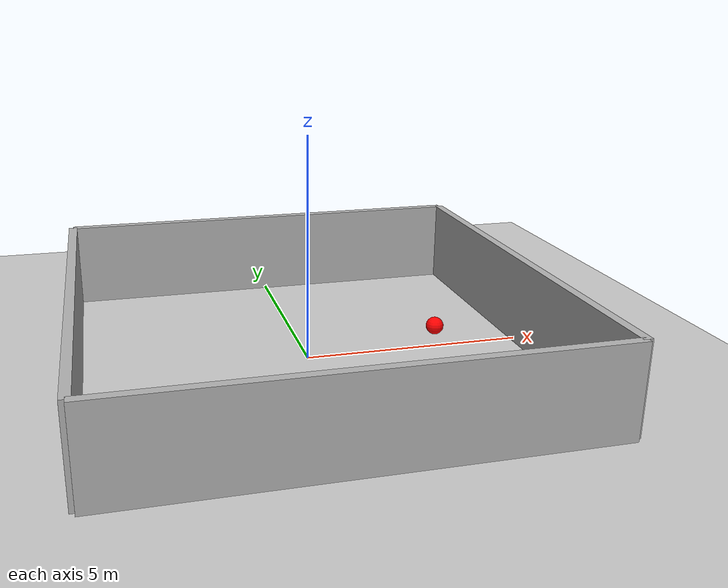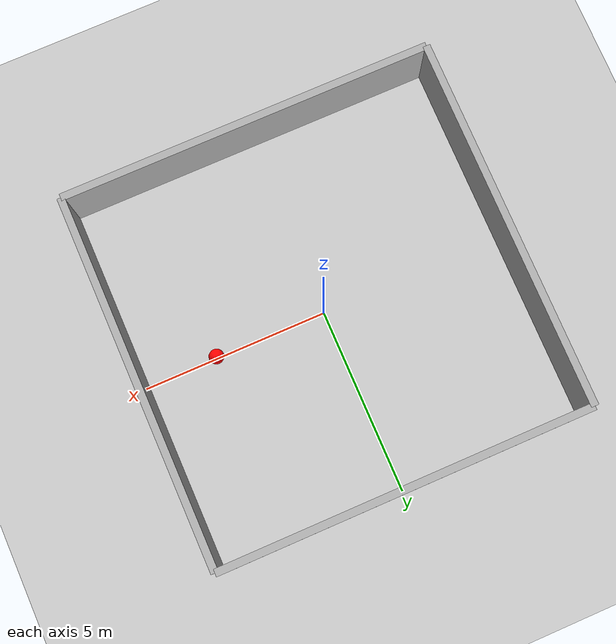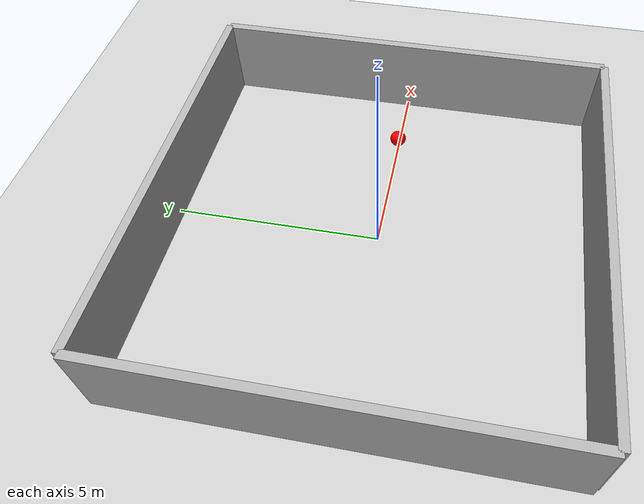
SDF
<?xml version="1.0" ?>
<sdf version="1.6">
  <world name="shooter_world">
    <!-- Default physics settings -->
    <physics type="ode">
      <max_step_size>0.001</max_step_size>
      <real_time_factor>1</real_time_factor>
      <real_time_update_rate>1000</real_time_update_rate>
    </physics>

    <!-- A global light source -->
    <include>
      <uri>model://sun</uri>
    </include>

    <!-- A ground plane -->
    <include>
      <uri>model://ground_plane</uri>
    </include>

    <!-- Target object (red ball) -->
    <model name="red_target">
      <pose>3 0 0.5 0 0 0</pose>
      <link name="link">
        <collision name="collision">
          <geometry>
            <sphere>
              <radius>0.2</radius>
            </sphere>
          </geometry>
        </collision>
        <visual name="visual">
          <geometry>
            <sphere>
              <radius>0.2</radius>
            </sphere>
          </geometry>
          <material>
            <ambient>1 0 0 1</ambient>
            <diffuse>1 0 0 1</diffuse>
            <specular>0.1 0.1 0.1 1</specular>
            <emissive>0 0 0 0</emissive>
          </material>
        </visual>
      </link>

      <!-- Plugin for moving the target -->
      <plugin name="target_mover" filename="libgazebo_ros_planar_move.so">
        <commandTopic>target_velocity</commandTopic>
        <odometryTopic>target_odom</odometryTopic>
        <odometryFrame>odom</odometryFrame>
        <robotBaseFrame>red_target</robotBaseFrame>
      </plugin>
    </model>

    <!-- Walls to provide boundaries -->
    <model name="wall_1">
      <static>true</static>
      <pose>0 5 1 0 0 0</pose>
      <link name="link">
        <collision name="collision">
          <geometry>
            <box>
              <size>10 0.2 2</size>
            </box>
          </geometry>
        </collision>
        <visual name="visual">
          <geometry>
            <box>
              <size>10 0.2 2</size>
            </box>
          </geometry>
          <material>
            <ambient>0.7 0.7 0.7 1</ambient>
            <diffuse>0.7 0.7 0.7 1</diffuse>
          </material>
        </visual>
      </link>
    </model>

    <model name="wall_2">
      <static>true</static>
      <pose>0 -5 1 0 0 0</pose>
      <link name="link">
        <collision name="collision">
          <geometry>
            <box>
              <size>10 0.2 2</size>
            </box>
          </geometry>
        </collision>
        <visual name="visual">
          <geometry>
            <box>
              <size>10 0.2 2</size>
            </box>
          </geometry>
          <material>
            <ambient>0.7 0.7 0.7 1</ambient>
            <diffuse>0.7 0.7 0.7 1</diffuse>
          </material>
        </visual>
      </link>
    </model>

    <model name="wall_3">
      <static>true</static>
      <pose>5 0 1 0 0 0</pose>
      <link name="link">
        <collision name="collision">
          <geometry>
            <box>
              <size>0.2 10 2</size>
            </box>
          </geometry>
        </collision>
        <visual name="visual">
          <geometry>
            <box>
              <size>0.2 10 2</size>
            </box>
          </geometry>
          <material>
            <ambient>0.7 0.7 0.7 1</ambient>
            <diffuse>0.7 0.7 0.7 1</diffuse>
          </material>
        </visual>
      </link>
    </model>

    <model name="wall_4">
      <static>true</static>
      <pose>-5 0 1 0 0 0</pose>
      <link name="link">
        <collision name="collision">
          <geometry>
            <box>
              <size>0.2 10 2</size>
            </box>
          </geometry>
        </collision>
        <visual name="visual">
          <geometry>
            <box>
              <size>0.2 10 2</size>
            </box>
          </geometry>
          <material>
            <ambient>0.7 0.7 0.7 1</ambient>
            <diffuse>0.7 0.7 0.7 1</diffuse>
          </material>
        </visual>
      </link>
    </model>
  </world>
</sdf>
